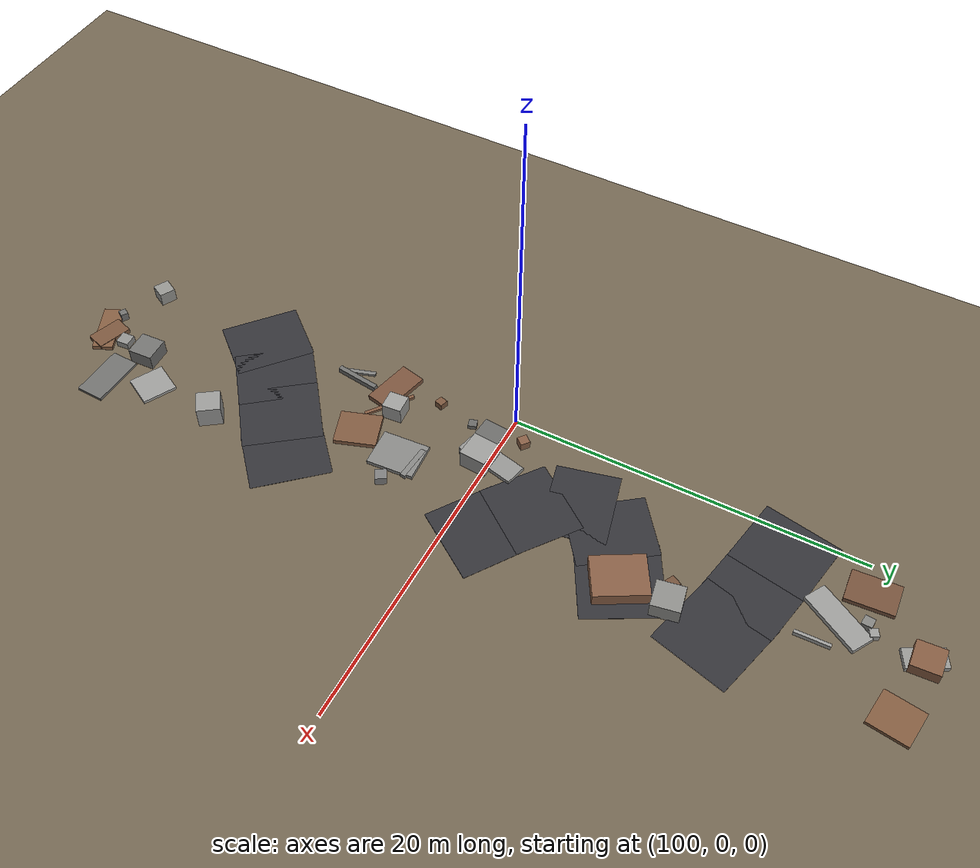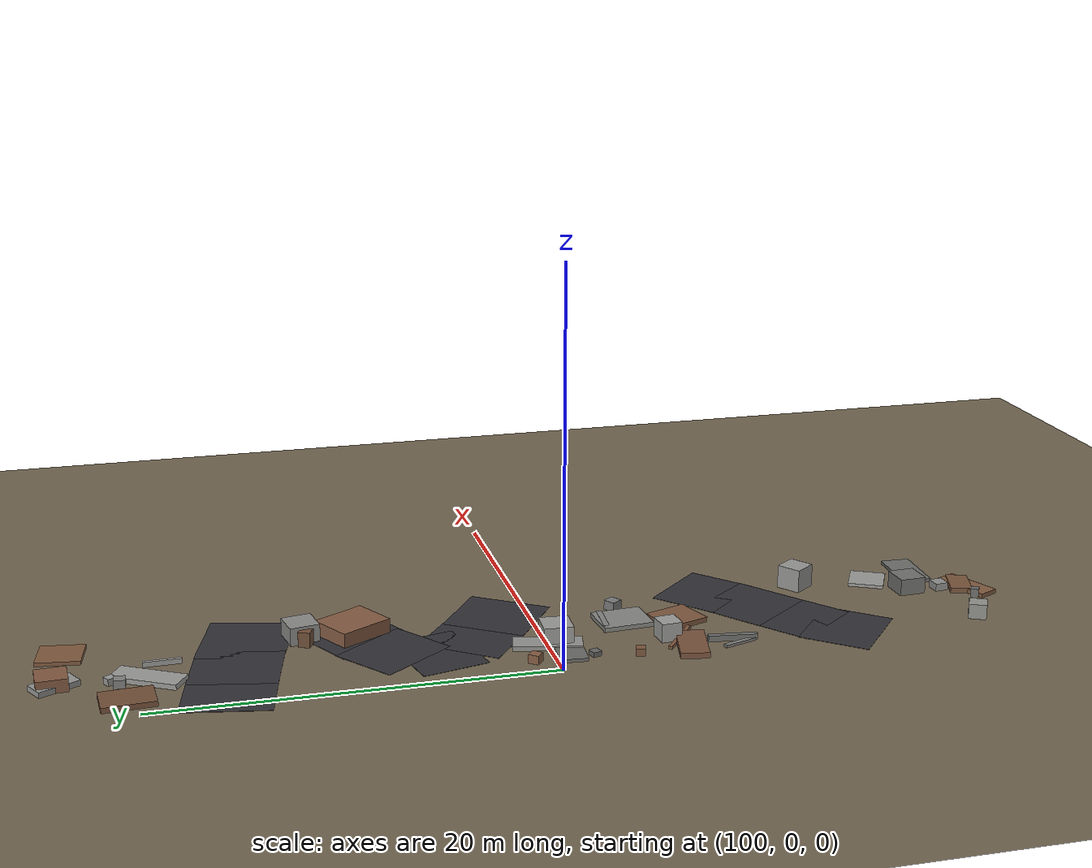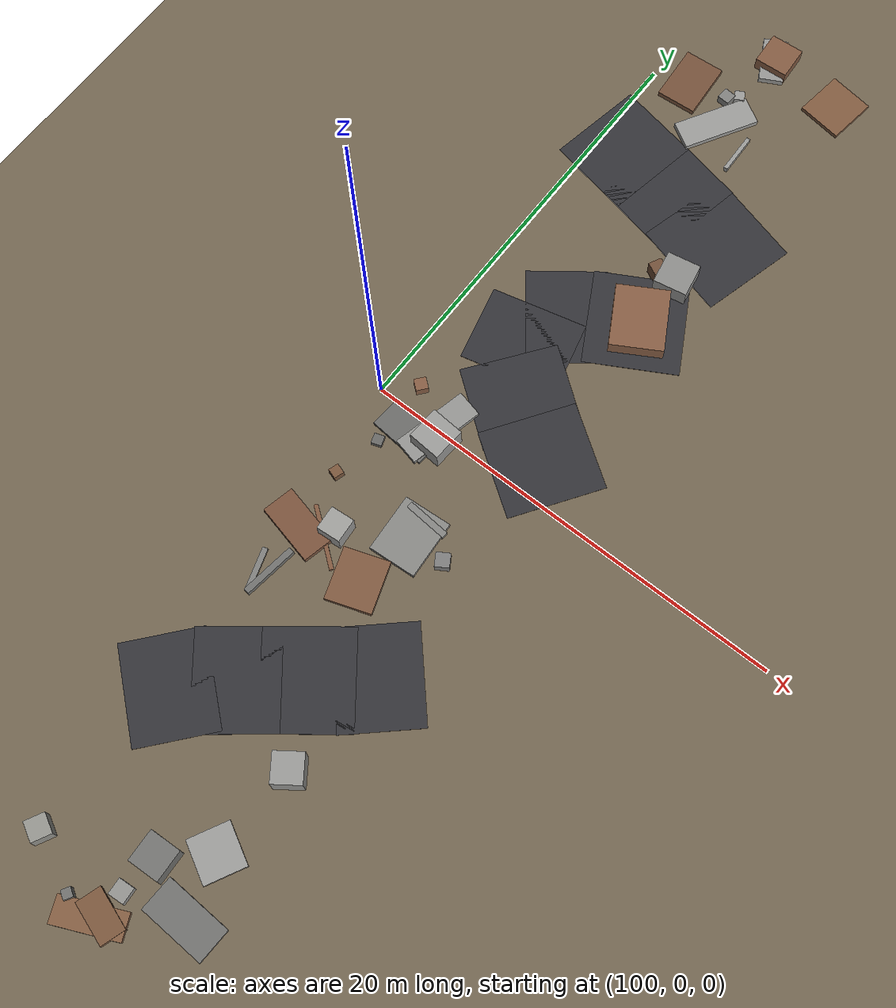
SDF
<sdf version="1.6">
 <world name="navitas_arena">
  <model name="ground_plane">
   <static>true</static>
   <link name="link">
    <collision name="collision">
     <geometry><plane><normal>0 0 1</normal><size>400 400</size></plane></geometry>
     <surface><friction><ode><mu>0.550</mu><mu2>0.550</mu2></ode></friction></surface>
    </collision>
    <visual name="visual">
     <cast_shadows>false</cast_shadows>
     <geometry><plane><normal>0 0 1</normal><size>400 400</size></plane></geometry>
     <material><ambient>0.450 0.400 0.320 1</ambient><diffuse>0.450 0.400 0.320 1</diffuse></material>
    </visual>
   </link>
  </model>
  <model name="road_zor_3_3">
   <static>true</static>
   <pose>101.425 -15.284 0.040 0 0 0.868</pose>
   <link name="link">
    <collision name="col"><geometry><box><size>3.626 4.400 0.020</size></box></geometry></collision>
    <visual name="vis">
     <geometry><box><size>3.626 4.400 0.020</size></box></geometry>
     <material><ambient>0.20 0.20 0.22 1</ambient><diffuse>0.20 0.20 0.22 1</diffuse></material>
    </visual>
   </link>
  </model>
  <model name="road_zor_3_4">
   <static>true</static>
   <pose>103.376 -13.401 0.040 0 0 0.668</pose>
   <link name="link">
    <collision name="col"><geometry><box><size>3.624 4.400 0.020</size></box></geometry></collision>
    <visual name="vis">
     <geometry><box><size>3.624 4.400 0.020</size></box></geometry>
     <material><ambient>0.20 0.20 0.22 1</ambient><diffuse>0.20 0.20 0.22 1</diffuse></material>
    </visual>
   </link>
  </model>
  <model name="road_zor_3_5">
   <static>true</static>
   <pose>105.634 -11.646 0.040 0 0 0.654</pose>
   <link name="link">
    <collision name="col"><geometry><box><size>3.895 4.400 0.020</size></box></geometry></collision>
    <visual name="vis">
     <geometry><box><size>3.895 4.400 0.020</size></box></geometry>
     <material><ambient>0.20 0.20 0.22 1</ambient><diffuse>0.20 0.20 0.22 1</diffuse></material>
    </visual>
   </link>
  </model>
  <model name="road_zor_3_6">
   <static>true</static>
   <pose>107.834 -9.813 0.040 0 0 0.739</pose>
   <link name="link">
    <collision name="col"><geometry><box><size>3.637 4.400 0.020</size></box></geometry></collision>
    <visual name="vis">
     <geometry><box><size>3.637 4.400 0.020</size></box></geometry>
     <material><ambient>0.20 0.20 0.22 1</ambient><diffuse>0.20 0.20 0.22 1</diffuse></material>
    </visual>
   </link>
  </model>
  <model name="road_zor_3_11">
   <static>true</static>
   <pose>107.380 1.625 0.040 0 0 2.545</pose>
   <link name="link">
    <collision name="col"><geometry><box><size>4.017 4.400 0.020</size></box></geometry></collision>
    <visual name="vis">
     <geometry><box><size>4.017 4.400 0.020</size></box></geometry>
     <material><ambient>0.20 0.20 0.22 1</ambient><diffuse>0.20 0.20 0.22 1</diffuse></material>
    </visual>
   </link>
  </model>
  <model name="road_zor_3_12">
   <static>true</static>
   <pose>104.918 3.375 0.040 0 0 2.501</pose>
   <link name="link">
    <collision name="col"><geometry><box><size>3.827 4.400 0.020</size></box></geometry></collision>
    <visual name="vis">
     <geometry><box><size>3.827 4.400 0.020</size></box></geometry>
     <material><ambient>0.20 0.20 0.22 1</ambient><diffuse>0.20 0.20 0.22 1</diffuse></material>
    </visual>
   </link>
  </model>
  <model name="road_zor_3_13">
   <static>true</static>
   <pose>103.437 5.521 0.040 0 0 1.808</pose>
   <link name="link">
    <collision name="col"><geometry><box><size>3.515 4.400 0.020</size></box></geometry></collision>
    <visual name="vis">
     <geometry><box><size>3.515 4.400 0.020</size></box></geometry>
     <material><ambient>0.20 0.20 0.22 1</ambient><diffuse>0.20 0.20 0.22 1</diffuse></material>
    </visual>
   </link>
  </model>
  <model name="road_zor_3_14">
   <static>true</static>
   <pose>104.212 7.609 0.040 0 0 0.646</pose>
   <link name="link">
    <collision name="col"><geometry><box><size>3.614 4.400 0.020</size></box></geometry></collision>
    <visual name="vis">
     <geometry><box><size>3.614 4.400 0.020</size></box></geometry>
     <material><ambient>0.20 0.20 0.22 1</ambient><diffuse>0.20 0.20 0.22 1</diffuse></material>
    </visual>
   </link>
  </model>
  <model name="road_zor_3_15">
   <static>true</static>
   <pose>106.770 9.243 0.040 0 0 0.506</pose>
   <link name="link">
    <collision name="col"><geometry><box><size>4.271 4.400 0.020</size></box></geometry></collision>
    <visual name="vis">
     <geometry><box><size>4.271 4.400 0.020</size></box></geometry>
     <material><ambient>0.20 0.20 0.22 1</ambient><diffuse>0.20 0.20 0.22 1</diffuse></material>
    </visual>
   </link>
  </model>
  <model name="road_zor_3_18">
   <static>true</static>
   <pose>107.300 14.552 0.040 0 0 2.877</pose>
   <link name="link">
    <collision name="col"><geometry><box><size>4.543 4.400 0.020</size></box></geometry></collision>
    <visual name="vis">
     <geometry><box><size>4.543 4.400 0.020</size></box></geometry>
     <material><ambient>0.20 0.20 0.22 1</ambient><diffuse>0.20 0.20 0.22 1</diffuse></material>
    </visual>
   </link>
  </model>
  <model name="road_zor_3_19">
   <static>true</static>
   <pose>104.133 15.320 0.040 0 0 2.937</pose>
   <link name="link">
    <collision name="col"><geometry><box><size>3.777 4.400 0.020</size></box></geometry></collision>
    <visual name="vis">
     <geometry><box><size>3.777 4.400 0.020</size></box></geometry>
     <material><ambient>0.20 0.20 0.22 1</ambient><diffuse>0.20 0.20 0.22 1</diffuse></material>
    </visual>
   </link>
  </model>
  <model name="road_zor_3_20">
   <static>true</static>
   <pose>101.263 15.889 0.040 0 0 2.954</pose>
   <link name="link">
    <collision name="col"><geometry><box><size>3.875 4.400 0.020</size></box></geometry></collision>
    <visual name="vis">
     <geometry><box><size>3.875 4.400 0.020</size></box></geometry>
     <material><ambient>0.20 0.20 0.22 1</ambient><diffuse>0.20 0.20 0.22 1</diffuse></material>
    </visual>
   </link>
  </model>
  <model name="blk_zor_3_1_1">
   <static>true</static>
   <pose>106.978 11.851 0.479 0 0 0.183</pose>
   <link name="link">
    <collision name="col"><geometry><box><size>1.545 1.545 0.959</size></box></geometry></collision>
    <visual name="vis">
     <geometry><box><size>1.545 1.545 0.959</size></box></geometry>
     <material><ambient>0.55 0.55 0.54 1</ambient><diffuse>0.55 0.55 0.54 1</diffuse></material>
    </visual>
   </link>
  </model>
  <model name="blk_zor_3_1_4">
   <static>true</static>
   <pose>106.093 11.694 0.400 0 0 2.672</pose>
   <link name="link">
    <collision name="col"><geometry><box><size>0.615 0.615 0.800</size></box></geometry></collision>
    <visual name="vis">
     <geometry><box><size>0.615 0.615 0.800</size></box></geometry>
     <material><ambient>0.45 0.32 0.23 1</ambient><diffuse>0.45 0.32 0.23 1</diffuse></material>
    </visual>
   </link>
  </model>
  <model name="blk_zor_3_1_5">
   <static>true</static>
   <pose>106.901 9.230 0.400 0 0 2.090</pose>
   <link name="link">
    <collision name="col"><geometry><box><size>2.911 2.408 0.800</size></box></geometry></collision>
    <visual name="vis">
     <geometry><box><size>2.911 2.408 0.800</size></box></geometry>
     <material><ambient>0.53 0.37 0.27 1</ambient><diffuse>0.53 0.37 0.27 1</diffuse></material>
    </visual>
   </link>
  </model>
  <model name="deb_zor_0">
   <static>true</static>
   <pose>107.928 -21.657 0.081 0 0 3.103</pose>
   <link name="link">
    <collision name="col"><geometry><box><size>3.075 1.592 0.162</size></box></geometry></collision>
    <visual name="vis">
     <geometry><box><size>3.075 1.592 0.162</size></box></geometry>
     <material><ambient>0.44 0.44 0.43 1</ambient><diffuse>0.44 0.44 0.43 1</diffuse></material>
    </visual>
   </link>
  </model>
  <model name="deb_zor_3">
   <static>true</static>
   <pose>101.291 -22.543 0.398 0 0 1.089</pose>
   <link name="link">
    <collision name="col"><geometry><box><size>0.907 0.907 0.796</size></box></geometry></collision>
    <visual name="vis">
     <geometry><box><size>0.907 0.907 0.796</size></box></geometry>
     <material><ambient>0.58 0.58 0.56 1</ambient><diffuse>0.58 0.58 0.56 1</diffuse></material>
    </visual>
   </link>
  </model>
  <model name="deb_zor_10">
   <static>true</static>
   <pose>102.134 -0.839 0.086 0 0 3.057</pose>
   <link name="link">
    <collision name="col"><geometry><box><size>2.676 1.461 0.171</size></box></geometry></collision>
    <visual name="vis">
     <geometry><box><size>2.676 1.461 0.171</size></box></geometry>
     <material><ambient>0.42 0.42 0.41 1</ambient><diffuse>0.42 0.42 0.41 1</diffuse></material>
    </visual>
   </link>
  </model>
  <model name="deb_zor_17">
   <static>true</static>
   <pose>103.036 0.039 0.126 0 0 1.341</pose>
   <link name="link">
    <collision name="col"><geometry><box><size>3.494 1.223 0.252</size></box></geometry></collision>
    <visual name="vis">
     <geometry><box><size>3.494 1.223 0.252</size></box></geometry>
     <material><ambient>0.58 0.58 0.57 1</ambient><diffuse>0.58 0.58 0.57 1</diffuse></material>
    </visual>
   </link>
  </model>
  <model name="deb_zor_27">
   <static>true</static>
   <pose>103.797 19.500 0.135 0 0 1.039</pose>
   <link name="link">
    <collision name="col"><geometry><box><size>3.567 1.304 0.269</size></box></geometry></collision>
    <visual name="vis">
     <geometry><box><size>3.567 1.304 0.269</size></box></geometry>
     <material><ambient>0.61 0.61 0.60 1</ambient><diffuse>0.61 0.61 0.60 1</diffuse></material>
    </visual>
   </link>
  </model>
  <model name="deb_zor_32">
   <static>true</static>
   <pose>105.563 -20.571 0.448 0 0 1.625</pose>
   <link name="link">
    <collision name="col"><geometry><box><size>1.429 1.429 0.897</size></box></geometry></collision>
    <visual name="vis">
     <geometry><box><size>1.429 1.429 0.897</size></box></geometry>
     <material><ambient>0.45 0.45 0.44 1</ambient><diffuse>0.45 0.45 0.44 1</diffuse></material>
    </visual>
   </link>
  </model>
  <model name="deb_zor_33">
   <static>true</static>
   <pose>101.291 1.097 0.232 0 0 2.455</pose>
   <link name="link">
    <collision name="col"><geometry><box><size>0.546 0.546 0.464</size></box></geometry></collision>
    <visual name="vis">
     <geometry><box><size>0.546 0.546 0.464</size></box></geometry>
     <material><ambient>0.53 0.37 0.27 1</ambient><diffuse>0.53 0.37 0.27 1</diffuse></material>
    </visual>
   </link>
  </model>
  <model name="deb_zor_36">
   <static>true</static>
   <pose>101.381 -1.945 0.127 0 0 0.315</pose>
   <link name="link">
    <collision name="col"><geometry><box><size>0.470 0.470 0.253</size></box></geometry></collision>
    <visual name="vis">
     <geometry><box><size>0.470 0.470 0.253</size></box></geometry>
     <material><ambient>0.41 0.41 0.40 1</ambient><diffuse>0.41 0.41 0.40 1</diffuse></material>
    </visual>
   </link>
  </model>
  <model name="deb_zor_38">
   <static>true</static>
   <pose>105.468 18.766 0.132 0 0 1.597</pose>
   <link name="link">
    <collision name="col"><geometry><box><size>1.897 0.179 0.265</size></box></geometry></collision>
    <visual name="vis">
     <geometry><box><size>1.897 0.179 0.265</size></box></geometry>
     <material><ambient>0.61 0.61 0.60 1</ambient><diffuse>0.61 0.61 0.60 1</diffuse></material>
    </visual>
   </link>
  </model>
  <model name="deb_zor_42">
   <static>true</static>
   <pose>106.883 -4.477 0.249 0 0 2.123</pose>
   <link name="link">
    <collision name="col"><geometry><box><size>0.639 0.639 0.498</size></box></geometry></collision>
    <visual name="vis">
     <geometry><box><size>0.639 0.639 0.498</size></box></geometry>
     <material><ambient>0.49 0.49 0.49 1</ambient><diffuse>0.49 0.49 0.49 1</diffuse></material>
    </visual>
   </link>
  </model>
  <model name="deb_zor_43">
   <static>true</static>
   <pose>100.988 -9.362 0.068 0 0 1.884</pose>
   <link name="link">
    <collision name="col"><geometry><box><size>1.842 0.243 0.137</size></box></geometry></collision>
    <visual name="vis">
     <geometry><box><size>1.842 0.243 0.137</size></box></geometry>
     <material><ambient>0.50 0.50 0.49 1</ambient><diffuse>0.50 0.50 0.49 1</diffuse></material>
    </visual>
   </link>
  </model>
  <model name="deb_zor_49">
   <static>true</static>
   <pose>101.502 -9.164 0.156 0 0 1.440</pose>
   <link name="link">
    <collision name="col"><geometry><box><size>2.524 0.274 0.312</size></box></geometry></collision>
    <visual name="vis">
     <geometry><box><size>2.524 0.274 0.312</size></box></geometry>
     <material><ambient>0.44 0.44 0.43 1</ambient><diffuse>0.44 0.44 0.43 1</diffuse></material>
    </visual>
   </link>
  </model>
  <model name="deb_zor_50">
   <static>true</static>
   <pose>105.348 -22.348 0.202 0 0 0.078</pose>
   <link name="link">
    <collision name="col"><geometry><box><size>0.725 0.725 0.405</size></box></geometry></collision>
    <visual name="vis">
     <geometry><box><size>0.725 0.725 0.405</size></box></geometry>
     <material><ambient>0.57 0.57 0.56 1</ambient><diffuse>0.57 0.57 0.56 1</diffuse></material>
    </visual>
   </link>
  </model>
  <model name="deb_zor_53">
   <static>true</static>
   <pose>100.937 -4.153 0.194 0 0 1.271</pose>
   <link name="link">
    <collision name="col"><geometry><box><size>0.472 0.472 0.388</size></box></geometry></collision>
    <visual name="vis">
     <geometry><box><size>0.472 0.472 0.388</size></box></geometry>
     <material><ambient>0.48 0.34 0.24 1</ambient><diffuse>0.48 0.34 0.24 1</diffuse></material>
    </visual>
   </link>
  </model>
  <model name="deb_zor_73">
   <static>true</static>
   <pose>102.559 -6.087 0.492 0 0 1.654</pose>
   <link name="link">
    <collision name="col"><geometry><box><size>1.095 1.095 0.984</size></box></geometry></collision>
    <visual name="vis">
     <geometry><box><size>1.095 1.095 0.984</size></box></geometry>
     <material><ambient>0.62 0.62 0.61 1</ambient><diffuse>0.62 0.62 0.61 1</diffuse></material>
    </visual>
   </link>
  </model>
  <model name="deb_zor_74">
   <static>true</static>
   <pose>107.493 -14.914 0.623 0 0 0.621</pose>
   <link name="link">
    <collision name="col"><geometry><box><size>1.316 1.316 1.245</size></box></geometry></collision>
    <visual name="vis">
     <geometry><box><size>1.316 1.316 1.245</size></box></geometry>
     <material><ambient>0.60 0.60 0.59 1</ambient><diffuse>0.60 0.60 0.59 1</diffuse></material>
    </visual>
   </link>
  </model>
  <model name="deb_zor_75">
   <static>true</static>
   <pose>105.320 -23.526 0.142 0 0 2.826</pose>
   <link name="link">
    <collision name="col"><geometry><box><size>1.959 1.127 0.284</size></box></geometry></collision>
    <visual name="vis">
     <geometry><box><size>1.959 1.127 0.284</size></box></geometry>
     <material><ambient>0.48 0.34 0.24 1</ambient><diffuse>0.48 0.34 0.24 1</diffuse></material>
    </visual>
   </link>
  </model>
  <model name="deb_zor_78">
   <static>true</static>
   <pose>101.164 -6.905 0.151 0 0 2.918</pose>
   <link name="link">
    <collision name="col"><geometry><box><size>2.837 1.464 0.301</size></box></geometry></collision>
    <visual name="vis">
     <geometry><box><size>2.837 1.464 0.301</size></box></geometry>
     <material><ambient>0.48 0.33 0.24 1</ambient><diffuse>0.48 0.33 0.24 1</diffuse></material>
    </visual>
   </link>
  </model>
  <model name="deb_zor_80">
   <static>true</static>
   <pose>102.302 -6.648 0.079 0 0 2.491</pose>
   <link name="link">
    <collision name="col"><geometry><box><size>2.917 0.193 0.158</size></box></geometry></collision>
    <visual name="vis">
     <geometry><box><size>2.917 0.193 0.158</size></box></geometry>
     <material><ambient>0.51 0.35 0.25 1</ambient><diffuse>0.51 0.35 0.25 1</diffuse></material>
    </visual>
   </link>
  </model>
  <model name="deb_zor_91">
   <static>true</static>
   <pose>105.860 -20.477 0.170 0 0 2.352</pose>
   <link name="link">
    <collision name="col"><geometry><box><size>0.570 0.570 0.339</size></box></geometry></collision>
    <visual name="vis">
     <geometry><box><size>0.570 0.570 0.339</size></box></geometry>
     <material><ambient>0.49 0.34 0.24 1</ambient><diffuse>0.49 0.34 0.24 1</diffuse></material>
    </visual>
   </link>
  </model>
  <model name="deb_zor_100">
   <static>true</static>
   <pose>101.609 20.561 0.137 0 0 1.643</pose>
   <link name="link">
    <collision name="col"><geometry><box><size>2.604 1.842 0.273</size></box></geometry></collision>
    <visual name="vis">
     <geometry><box><size>2.604 1.842 0.273</size></box></geometry>
     <material><ambient>0.46 0.32 0.23 1</ambient><diffuse>0.46 0.32 0.23 1</diffuse></material>
    </visual>
   </link>
  </model>
  <model name="deb_zor_106">
   <static>true</static>
   <pose>107.619 23.572 0.098 0 0 1.431</pose>
   <link name="link">
    <collision name="col"><geometry><box><size>2.252 2.076 0.195</size></box></geometry></collision>
    <visual name="vis">
     <geometry><box><size>2.252 2.076 0.195</size></box></geometry>
     <material><ambient>0.51 0.36 0.25 1</ambient><diffuse>0.51 0.36 0.25 1</diffuse></material>
    </visual>
   </link>
  </model>
  <model name="deb_zor_109">
   <static>true</static>
   <pose>105.243 -3.458 0.117 0 0 3.067</pose>
   <link name="link">
    <collision name="col"><geometry><box><size>2.001 0.297 0.235</size></box></geometry></collision>
    <visual name="vis">
     <geometry><box><size>2.001 0.297 0.235</size></box></geometry>
     <material><ambient>0.52 0.52 0.51 1</ambient><diffuse>0.52 0.52 0.51 1</diffuse></material>
    </visual>
   </link>
  </model>
  <model name="deb_zor_118">
   <static>true</static>
   <pose>104.145 23.979 0.335 0 0 0.061</pose>
   <link name="link">
    <collision name="col"><geometry><box><size>1.540 1.540 0.671</size></box></geometry></collision>
    <visual name="vis">
     <geometry><box><size>1.540 1.540 0.671</size></box></geometry>
     <material><ambient>0.52 0.36 0.26 1</ambient><diffuse>0.52 0.36 0.26 1</diffuse></material>
    </visual>
   </link>
  </model>
  <model name="deb_zor_123">
   <static>true</static>
   <pose>105.020 -23.849 0.120 0 0 0.421</pose>
   <link name="link">
    <collision name="col"><geometry><box><size>2.965 1.172 0.240</size></box></geometry></collision>
    <visual name="vis">
     <geometry><box><size>2.965 1.172 0.240</size></box></geometry>
     <material><ambient>0.52 0.37 0.26 1</ambient><diffuse>0.52 0.37 0.26 1</diffuse></material>
    </visual>
   </link>
  </model>
  <model name="deb_zor_142">
   <static>true</static>
   <pose>103.787 -23.683 0.246 0 0 2.597</pose>
   <link name="link">
    <collision name="col"><geometry><box><size>0.415 0.415 0.491</size></box></geometry></collision>
    <visual name="vis">
     <geometry><box><size>0.415 0.415 0.491</size></box></geometry>
     <material><ambient>0.44 0.44 0.43 1</ambient><diffuse>0.44 0.44 0.43 1</diffuse></material>
    </visual>
   </link>
  </model>
  <model name="deb_zor_144">
   <static>true</static>
   <pose>103.983 23.851 0.146 0 0 2.055</pose>
   <link name="link">
    <collision name="col"><geometry><box><size>2.178 1.118 0.291</size></box></geometry></collision>
    <visual name="vis">
     <geometry><box><size>2.178 1.118 0.291</size></box></geometry>
     <material><ambient>0.59 0.59 0.58 1</ambient><diffuse>0.59 0.59 0.58 1</diffuse></material>
    </visual>
   </link>
  </model>
  <model name="deb_zor_147">
   <static>true</static>
   <pose>105.125 -4.450 0.116 0 0 1.642</pose>
   <link name="link">
    <collision name="col"><geometry><box><size>2.669 2.194 0.232</size></box></geometry></collision>
    <visual name="vis">
     <geometry><box><size>2.669 2.194 0.232</size></box></geometry>
     <material><ambient>0.53 0.53 0.52 1</ambient><diffuse>0.53 0.53 0.52 1</diffuse></material>
    </visual>
   </link>
  </model>
  <model name="deb_zor_152">
   <static>true</static>
   <pose>104.622 -7.241 0.132 0 0 1.903</pose>
   <link name="link">
    <collision name="col"><geometry><box><size>2.351 2.080 0.265</size></box></geometry></collision>
    <visual name="vis">
     <geometry><box><size>2.351 2.080 0.265</size></box></geometry>
     <material><ambient>0.50 0.35 0.25 1</ambient><diffuse>0.50 0.35 0.25 1</diffuse></material>
    </visual>
   </link>
  </model>
  <model name="deb_zor_155">
   <static>true</static>
   <pose>103.847 21.287 0.178 0 0 2.051</pose>
   <link name="link">
    <collision name="col"><geometry><box><size>0.461 0.461 0.357</size></box></geometry></collision>
    <visual name="vis">
     <geometry><box><size>0.461 0.461 0.357</size></box></geometry>
     <material><ambient>0.61 0.61 0.60 1</ambient><diffuse>0.61 0.61 0.60 1</diffuse></material>
    </visual>
   </link>
  </model>
  <model name="deb_zor_172">
   <static>true</static>
   <pose>103.362 -0.473 0.546 0 0 3.073</pose>
   <link name="link">
    <collision name="col"><geometry><box><size>1.526 1.526 1.092</size></box></geometry></collision>
    <visual name="vis">
     <geometry><box><size>1.526 1.526 1.092</size></box></geometry>
     <material><ambient>0.61 0.61 0.60 1</ambient><diffuse>0.61 0.61 0.60 1</diffuse></material>
    </visual>
   </link>
  </model>
  <model name="deb_zor_173">
   <static>true</static>
   <pose>107.250 -19.029 0.086 0 0 1.085</pose>
   <link name="link">
    <collision name="col"><geometry><box><size>1.868 1.937 0.172</size></box></geometry></collision>
    <visual name="vis">
     <geometry><box><size>1.868 1.937 0.172</size></box></geometry>
     <material><ambient>0.61 0.61 0.60 1</ambient><diffuse>0.61 0.61 0.60 1</diffuse></material>
    </visual>
   </link>
  </model>
  <model name="deb_zor_178">
   <static>true</static>
   <pose>103.423 20.857 0.216 0 0 1.497</pose>
   <link name="link">
    <collision name="col"><geometry><box><size>0.558 0.558 0.432</size></box></geometry></collision>
    <visual name="vis">
     <geometry><box><size>0.558 0.558 0.432</size></box></geometry>
     <material><ambient>0.51 0.51 0.50 1</ambient><diffuse>0.51 0.51 0.50 1</diffuse></material>
    </visual>
   </link>
  </model>
 </world>
</sdf>
